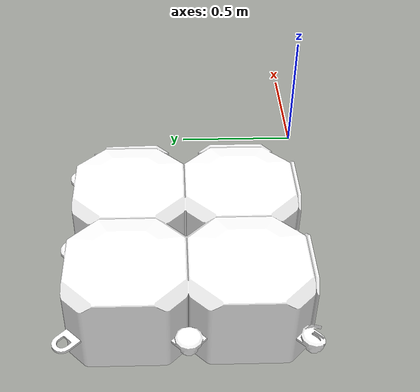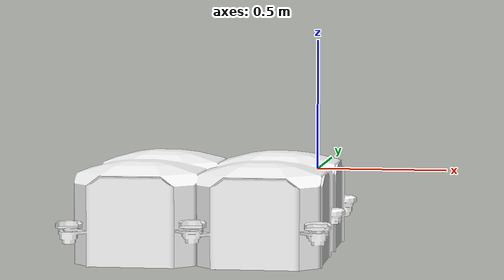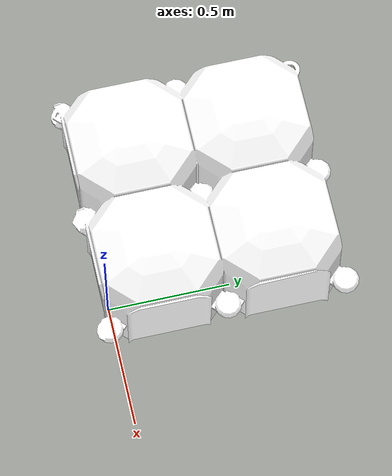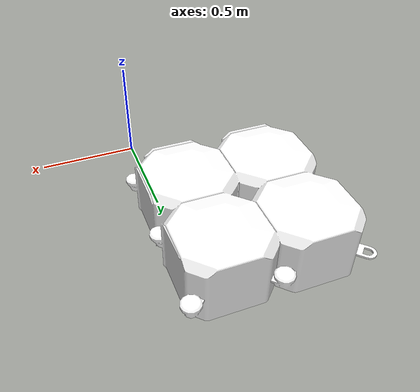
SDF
<?xml version="1.0"?>
<sdf version="1.5">
  <model name="dock_block_2x2">
    <static>true</static>
    <link name="link">
      <collision name="collision">
        <pose>0 0 0 0 0 0</pose>
        <geometry>
          <box>
            <size>1 1 0.4</size>
          </box>
        </geometry>
      </collision>
      <visual name="visual">
        <pose>-0.25 0.25 0.0 0 0 0 </pose>
        <geometry>
          <mesh>
            <uri>mesh/dock_block_2x2.dae</uri>
          </mesh>
        </geometry>
        <material>
          <diffuse>1.0 1.0 1.0</diffuse>
          <specular>1.0 1.0 1.0</specular>
          <pbr>
            <metal>
              <albedo_map>file://dock_block_2x2/mesh/DockCubes_Albedo.png</albedo_map>
              <normal_map>file://dock_block_2x2/mesh/DockCubes_Normal.png</normal_map>
              <roughness_map>file://dock_block_2x2/mesh/DockCubes_Roughness.png</roughness_map>
              <metalness_map>file://dock_block_2x2/mesh/DockCubes_Metalness.png</metalness_map>
            </metal>
          </pbr>
        </material>
      </visual>
    </link>
  </model>
</sdf>
